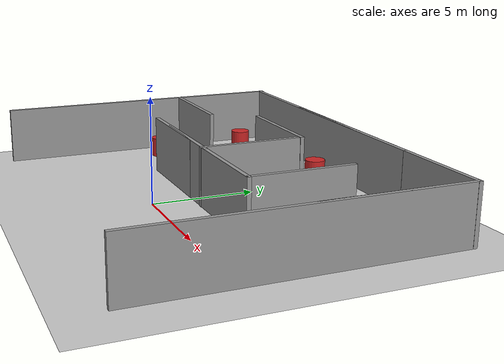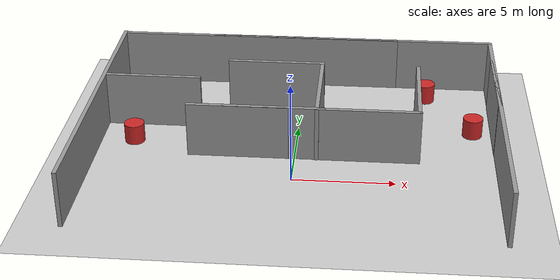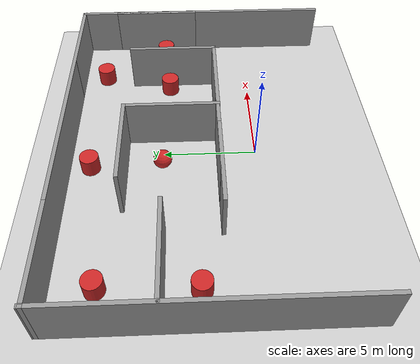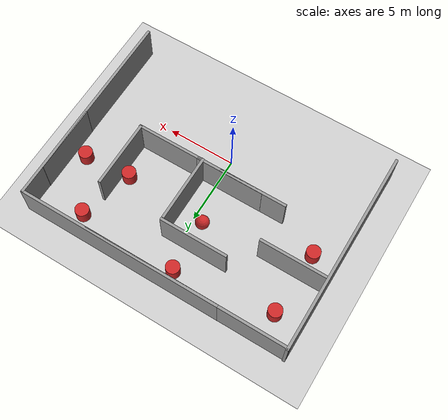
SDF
<sdf version="1.7">
 <world name="default">
  <model name="ground_plane">
   <static>1</static>
   <link name="link">
    <collision name="collision">
     <geometry><plane><normal>0 0 1</normal><size>100 100</size></plane></geometry>
     <surface>
      <contact><collide_bitmask>65535</collide_bitmask></contact>
      <friction><ode><mu>100</mu><mu2>50</mu2></ode></friction>
     </surface>
    </collision>
    <visual name="visual">
     <cast_shadows>0</cast_shadows>
     <geometry><plane><normal>0 0 1</normal><size>100 100</size></plane></geometry>
     <material>
      <script><uri>file://media/materials/scripts/gazebo.material</uri><name>Gazebo/Grey</name></script>
     </material>
    </visual>
   </link>
  </model>
  <model name="grey_wall_5_clone_clone_0_clone_1_clone_0">
   <link name="link">
    <pose>0 0 1.4 0 -0 0</pose>
    <inertial>
     <mass>1</mass>
     <inertia><ixx>1</ixx><ixy>0</ixy><ixz>0</ixz><iyy>1</iyy><iyz>0</iyz><izz>1</izz></inertia>
    </inertial>
    <visual name="visual">
     <cast_shadows>0</cast_shadows>
     <geometry><box><size>5 0.2 2.8</size></box></geometry>
     <material>
      <script>
       <uri>model://grey_wall/materials/scripts</uri>
       <uri>model://grey_wall/materials/textures</uri>
       <name>vrc/grey_wall</name>
      </script>
      <shader type="pixel"><normal_map>__default__</normal_map></shader>
      <ambient>1 1 1 1</ambient>
      <diffuse>1 1 1 1</diffuse>
      <specular>0 0 0 1</specular>
      <emissive>0 0 0 1</emissive>
     </material>
    </visual>
    <collision name="collision">
     <geometry><box><size>5 0.2 2.8</size></box></geometry>
     <surface>
      <friction>
       <ode><mu>1</mu><mu2>1</mu2><fdir1>0 0 0</fdir1><slip1>0</slip1><slip2>0</slip2></ode>
       <torsional>
        <coefficient>1</coefficient>
        <patch_radius>0</patch_radius>
        <surface_radius>0</surface_radius>
        <use_patch_radius>1</use_patch_radius>
        <ode><slip>0</slip></ode>
       </torsional>
      </friction>
      <bounce><restitution_coefficient>0</restitution_coefficient><threshold>1e+06</threshold></bounce>
      <contact>
       <collide_without_contact>0</collide_without_contact>
       <collide_without_contact_bitmask>1</collide_without_contact_bitmask>
       <collide_bitmask>1</collide_bitmask>
       <ode>
        <soft_cfm>0</soft_cfm>
        <soft_erp>0.2</soft_erp>
        <kp>1e+13</kp>
        <kd>1</kd>
        <max_vel>0.01</max_vel>
        <min_depth>0</min_depth>
       </ode>
       <bullet>
        <split_impulse>1</split_impulse>
        <split_impulse_penetration_threshold>-0.01</split_impulse_penetration_threshold>
        <soft_cfm>0</soft_cfm>
        <soft_erp>0.2</soft_erp>
        <kp>1e+13</kp>
        <kd>1</kd>
       </bullet>
      </contact>
     </surface>
    </collision>
   </link>
   <static>1</static>
   <pose>6.02291 4.49574 0 0 -0 1.57141</pose>
  </model>
  <model name="grey_wall_5_clone_clone_0_clone_1_clone_0_clone">
   <link name="link">
    <pose>0 0 1.4 0 -0 0</pose>
    <inertial>
     <mass>1</mass>
     <inertia><ixx>1</ixx><ixy>0</ixy><ixz>0</ixz><iyy>1</iyy><iyz>0</iyz><izz>1</izz></inertia>
    </inertial>
    <visual name="visual">
     <cast_shadows>0</cast_shadows>
     <geometry><box><size>5 0.2 2.8</size></box></geometry>
     <material>
      <script>
       <uri>model://grey_wall/materials/scripts</uri>
       <uri>model://grey_wall/materials/textures</uri>
       <name>vrc/grey_wall</name>
      </script>
      <shader type="pixel"><normal_map>__default__</normal_map></shader>
      <ambient>1 1 1 1</ambient>
      <diffuse>1 1 1 1</diffuse>
      <specular>0 0 0 1</specular>
      <emissive>0 0 0 1</emissive>
     </material>
    </visual>
    <collision name="collision">
     <geometry><box><size>5 0.2 2.8</size></box></geometry>
     <surface>
      <friction>
       <ode><mu>1</mu><mu2>1</mu2><fdir1>0 0 0</fdir1><slip1>0</slip1><slip2>0</slip2></ode>
       <torsional>
        <coefficient>1</coefficient>
        <patch_radius>0</patch_radius>
        <surface_radius>0</surface_radius>
        <use_patch_radius>1</use_patch_radius>
        <ode><slip>0</slip></ode>
       </torsional>
      </friction>
      <bounce><restitution_coefficient>0</restitution_coefficient><threshold>1e+06</threshold></bounce>
      <contact>
       <collide_without_contact>0</collide_without_contact>
       <collide_without_contact_bitmask>1</collide_without_contact_bitmask>
       <collide_bitmask>1</collide_bitmask>
       <ode>
        <soft_cfm>0</soft_cfm>
        <soft_erp>0.2</soft_erp>
        <kp>1e+13</kp>
        <kd>1</kd>
        <max_vel>0.01</max_vel>
        <min_depth>0</min_depth>
       </ode>
       <bullet>
        <split_impulse>1</split_impulse>
        <split_impulse_penetration_threshold>-0.01</split_impulse_penetration_threshold>
        <soft_cfm>0</soft_cfm>
        <soft_erp>0.2</soft_erp>
        <kp>1e+13</kp>
        <kd>1</kd>
       </bullet>
      </contact>
     </surface>
    </collision>
   </link>
   <static>1</static>
   <pose>1.0863 4.4302 0 0 -0 1.57141</pose>
  </model>
  <model name="grey_wall_5_clone_2">
   <link name="link">
    <pose>0 0 1.4 0 -0 0</pose>
    <inertial>
     <mass>1</mass>
     <inertia><ixx>1</ixx><ixy>0</ixy><ixz>0</ixz><iyy>1</iyy><iyz>0</iyz><izz>1</izz></inertia>
    </inertial>
    <visual name="visual">
     <cast_shadows>0</cast_shadows>
     <geometry><box><size>5 0.2 2.8</size></box></geometry>
     <material>
      <script>
       <uri>model://grey_wall/materials/scripts</uri>
       <uri>model://grey_wall/materials/textures</uri>
       <name>vrc/grey_wall</name>
      </script>
      <shader type="pixel"><normal_map>__default__</normal_map></shader>
      <ambient>1 1 1 1</ambient>
      <diffuse>1 1 1 1</diffuse>
      <specular>0 0 0 1</specular>
      <emissive>0 0 0 1</emissive>
     </material>
    </visual>
    <collision name="collision">
     <geometry><box><size>5 0.2 2.8</size></box></geometry>
     <surface>
      <friction>
       <ode><mu>1</mu><mu2>1</mu2><fdir1>0 0 0</fdir1><slip1>0</slip1><slip2>0</slip2></ode>
       <torsional>
        <coefficient>1</coefficient>
        <patch_radius>0</patch_radius>
        <surface_radius>0</surface_radius>
        <use_patch_radius>1</use_patch_radius>
        <ode><slip>0</slip></ode>
       </torsional>
      </friction>
      <bounce><restitution_coefficient>0</restitution_coefficient><threshold>1e+06</threshold></bounce>
      <contact>
       <collide_without_contact>0</collide_without_contact>
       <collide_without_contact_bitmask>1</collide_without_contact_bitmask>
       <collide_bitmask>1</collide_bitmask>
       <ode>
        <soft_cfm>0</soft_cfm>
        <soft_erp>0.2</soft_erp>
        <kp>1e+13</kp>
        <kd>1</kd>
        <max_vel>0.01</max_vel>
        <min_depth>0</min_depth>
       </ode>
       <bullet>
        <split_impulse>1</split_impulse>
        <split_impulse_penetration_threshold>-0.01</split_impulse_penetration_threshold>
        <soft_cfm>0</soft_cfm>
        <soft_erp>0.2</soft_erp>
        <kp>1e+13</kp>
        <kd>1</kd>
       </bullet>
      </contact>
     </surface>
    </collision>
   </link>
   <static>1</static>
   <pose>3.64905 2.04661 0 0 0 -0.000612</pose>
  </model>
  <model name="grey_wall_5_clone_clone">
   <link name="link">
    <pose>0 0 1.4 0 -0 0</pose>
    <inertial>
     <mass>1</mass>
     <inertia><ixx>1</ixx><ixy>0</ixy><ixz>0</ixz><iyy>1</iyy><iyz>0</iyz><izz>1</izz></inertia>
    </inertial>
    <visual name="visual">
     <cast_shadows>0</cast_shadows>
     <geometry><box><size>5 0.2 2.8</size></box></geometry>
     <material>
      <script>
       <uri>model://grey_wall/materials/scripts</uri>
       <uri>model://grey_wall/materials/textures</uri>
       <name>vrc/grey_wall</name>
      </script>
      <shader type="pixel"><normal_map>__default__</normal_map></shader>
      <ambient>1 1 1 1</ambient>
      <diffuse>1 1 1 1</diffuse>
      <specular>0 0 0 1</specular>
      <emissive>0 0 0 1</emissive>
     </material>
    </visual>
    <collision name="collision">
     <geometry><box><size>5 0.2 2.8</size></box></geometry>
     <surface>
      <friction>
       <ode><mu>1</mu><mu2>1</mu2><fdir1>0 0 0</fdir1><slip1>0</slip1><slip2>0</slip2></ode>
       <torsional>
        <coefficient>1</coefficient>
        <patch_radius>0</patch_radius>
        <surface_radius>0</surface_radius>
        <use_patch_radius>1</use_patch_radius>
        <ode><slip>0</slip></ode>
       </torsional>
      </friction>
      <bounce><restitution_coefficient>0</restitution_coefficient><threshold>1e+06</threshold></bounce>
      <contact>
       <collide_without_contact>0</collide_without_contact>
       <collide_without_contact_bitmask>1</collide_without_contact_bitmask>
       <collide_bitmask>1</collide_bitmask>
       <ode>
        <soft_cfm>0</soft_cfm>
        <soft_erp>0.2</soft_erp>
        <kp>1e+13</kp>
        <kd>1</kd>
        <max_vel>0.01</max_vel>
        <min_depth>0</min_depth>
       </ode>
       <bullet>
        <split_impulse>1</split_impulse>
        <split_impulse_penetration_threshold>-0.01</split_impulse_penetration_threshold>
        <soft_cfm>0</soft_cfm>
        <soft_erp>0.2</soft_erp>
        <kp>1e+13</kp>
        <kd>1</kd>
       </bullet>
      </contact>
     </surface>
    </collision>
   </link>
   <static>1</static>
   <pose>9.88535 5.54473 0 0 -0 1.57141</pose>
  </model>
  <model name="grey_wall_15_clone_0_clone_2_clone_0">
   <link name="link">
    <pose>0 0 1.4 0 -0 0</pose>
    <inertial>
     <mass>1</mass>
     <inertia><ixx>1</ixx><ixy>0</ixy><ixz>0</ixz><iyy>1</iyy><iyz>0</iyz><izz>1</izz></inertia>
    </inertial>
    <visual name="visual">
     <cast_shadows>0</cast_shadows>
     <geometry><box><size>15 0.2 2.8</size></box></geometry>
     <material>
      <script>
       <uri>model://grey_wall/materials/scripts</uri>
       <uri>model://grey_wall/materials/textures</uri>
       <name>vrc/grey_wall</name>
      </script>
      <shader type="pixel"><normal_map>__default__</normal_map></shader>
      <ambient>1 1 1 1</ambient>
      <diffuse>1 1 1 1</diffuse>
      <specular>0 0 0 1</specular>
      <emissive>0 0 0 1</emissive>
     </material>
    </visual>
    <collision name="collision">
     <geometry><box><size>15 0.2 2.8</size></box></geometry>
     <surface>
      <friction>
       <ode><mu>1</mu><mu2>1</mu2><fdir1>0 0 0</fdir1><slip1>0</slip1><slip2>0</slip2></ode>
       <torsional>
        <coefficient>1</coefficient>
        <patch_radius>0</patch_radius>
        <surface_radius>0</surface_radius>
        <use_patch_radius>1</use_patch_radius>
        <ode><slip>0</slip></ode>
       </torsional>
      </friction>
      <bounce><restitution_coefficient>0</restitution_coefficient><threshold>1e+06</threshold></bounce>
      <contact>
       <collide_without_contact>0</collide_without_contact>
       <collide_without_contact_bitmask>1</collide_without_contact_bitmask>
       <collide_bitmask>1</collide_bitmask>
       <ode>
        <soft_cfm>0</soft_cfm>
        <soft_erp>0.2</soft_erp>
        <kp>1e+13</kp>
        <kd>1</kd>
        <max_vel>0.01</max_vel>
        <min_depth>0</min_depth>
       </ode>
       <bullet>
        <split_impulse>1</split_impulse>
        <split_impulse_penetration_threshold>-0.01</split_impulse_penetration_threshold>
        <soft_cfm>0</soft_cfm>
        <soft_erp>0.2</soft_erp>
        <kp>1e+13</kp>
        <kd>1</kd>
       </bullet>
      </contact>
     </surface>
    </collision>
   </link>
   <static>1</static>
   <pose>9.90394 2.70414 0 0 -0 1.57141</pose>
  </model>
  <model name="grey_wall_15_clone_0_clone_clone_clone_clone_0_clone">
   <link name="link">
    <pose>0 0 1.4 0 -0 0</pose>
    <inertial>
     <mass>1</mass>
     <inertia><ixx>1</ixx><ixy>0</ixy><ixz>0</ixz><iyy>1</iyy><iyz>0</iyz><izz>1</izz></inertia>
    </inertial>
    <visual name="visual">
     <cast_shadows>0</cast_shadows>
     <geometry><box><size>15 0.2 2.8</size></box></geometry>
     <material>
      <script>
       <uri>model://grey_wall/materials/scripts</uri>
       <uri>model://grey_wall/materials/textures</uri>
       <name>vrc/grey_wall</name>
      </script>
      <shader type="pixel"><normal_map>__default__</normal_map></shader>
      <ambient>1 1 1 1</ambient>
      <diffuse>1 1 1 1</diffuse>
      <specular>0 0 0 1</specular>
      <emissive>0 0 0 1</emissive>
     </material>
    </visual>
    <collision name="collision">
     <geometry><box><size>15 0.2 2.8</size></box></geometry>
     <surface>
      <friction>
       <ode><mu>1</mu><mu2>1</mu2><fdir1>0 0 0</fdir1><slip1>0</slip1><slip2>0</slip2></ode>
       <torsional>
        <coefficient>1</coefficient>
        <patch_radius>0</patch_radius>
        <surface_radius>0</surface_radius>
        <use_patch_radius>1</use_patch_radius>
        <ode><slip>0</slip></ode>
       </torsional>
      </friction>
      <bounce><restitution_coefficient>0</restitution_coefficient><threshold>1e+06</threshold></bounce>
      <contact>
       <collide_without_contact>0</collide_without_contact>
       <collide_without_contact_bitmask>1</collide_without_contact_bitmask>
       <collide_bitmask>1</collide_bitmask>
       <ode>
        <soft_cfm>0</soft_cfm>
        <soft_erp>0.2</soft_erp>
        <kp>1e+13</kp>
        <kd>1</kd>
        <max_vel>0.01</max_vel>
        <min_depth>0</min_depth>
       </ode>
       <bullet>
        <split_impulse>1</split_impulse>
        <split_impulse_penetration_threshold>-0.01</split_impulse_penetration_threshold>
        <soft_cfm>0</soft_cfm>
        <soft_erp>0.2</soft_erp>
        <kp>1e+13</kp>
        <kd>1</kd>
       </bullet>
      </contact>
     </surface>
    </collision>
   </link>
   <static>1</static>
   <pose>-2.52981 10.1104 0 0 -0 0.001488</pose>
  </model>
  <model name="grey_wall_15_clone_0_clone_clone_clone_clone_0_clone_0">
   <link name="link">
    <pose>0 0 1.4 0 -0 0</pose>
    <inertial>
     <mass>1</mass>
     <inertia><ixx>1</ixx><ixy>0</ixy><ixz>0</ixz><iyy>1</iyy><iyz>0</iyz><izz>1</izz></inertia>
    </inertial>
    <visual name="visual">
     <cast_shadows>0</cast_shadows>
     <geometry><box><size>15 0.2 2.8</size></box></geometry>
     <material>
      <script>
       <uri>model://grey_wall/materials/scripts</uri>
       <uri>model://grey_wall/materials/textures</uri>
       <name>vrc/grey_wall</name>
      </script>
      <shader type="pixel"><normal_map>__default__</normal_map></shader>
      <ambient>1 1 1 1</ambient>
      <diffuse>1 1 1 1</diffuse>
      <specular>0 0 0 1</specular>
      <emissive>0 0 0 1</emissive>
     </material>
    </visual>
    <collision name="collision">
     <geometry><box><size>15 0.2 2.8</size></box></geometry>
     <surface>
      <friction>
       <ode><mu>1</mu><mu2>1</mu2><fdir1>0 0 0</fdir1><slip1>0</slip1><slip2>0</slip2></ode>
       <torsional>
        <coefficient>1</coefficient>
        <patch_radius>0</patch_radius>
        <surface_radius>0</surface_radius>
        <use_patch_radius>1</use_patch_radius>
        <ode><slip>0</slip></ode>
       </torsional>
      </friction>
      <bounce><restitution_coefficient>0</restitution_coefficient><threshold>1e+06</threshold></bounce>
      <contact>
       <collide_without_contact>0</collide_without_contact>
       <collide_without_contact_bitmask>1</collide_without_contact_bitmask>
       <collide_bitmask>1</collide_bitmask>
       <ode>
        <soft_cfm>0</soft_cfm>
        <soft_erp>0.2</soft_erp>
        <kp>1e+13</kp>
        <kd>1</kd>
        <max_vel>0.01</max_vel>
        <min_depth>0</min_depth>
       </ode>
       <bullet>
        <split_impulse>1</split_impulse>
        <split_impulse_penetration_threshold>-0.01</split_impulse_penetration_threshold>
        <soft_cfm>0</soft_cfm>
        <soft_erp>0.2</soft_erp>
        <kp>1e+13</kp>
        <kd>1</kd>
       </bullet>
      </contact>
     </surface>
    </collision>
   </link>
   <static>1</static>
   <pose>2.50794 10.1235 0 0 -0 0.001488</pose>
  </model>
  <model name="grey_wall_15_clone_0_clone_2_clone_0_clone">
   <link name="link">
    <pose>0 0 1.4 0 -0 0</pose>
    <inertial>
     <mass>1</mass>
     <inertia><ixx>1</ixx><ixy>0</ixy><ixz>0</ixz><iyy>1</iyy><iyz>0</iyz><izz>1</izz></inertia>
    </inertial>
    <visual name="visual">
     <cast_shadows>0</cast_shadows>
     <geometry><box><size>15 0.2 2.8</size></box></geometry>
     <material>
      <script>
       <uri>model://grey_wall/materials/scripts</uri>
       <uri>model://grey_wall/materials/textures</uri>
       <name>vrc/grey_wall</name>
      </script>
      <shader type="pixel"><normal_map>__default__</normal_map></shader>
      <ambient>1 1 1 1</ambient>
      <diffuse>1 1 1 1</diffuse>
      <specular>0 0 0 1</specular>
      <emissive>0 0 0 1</emissive>
     </material>
    </visual>
    <collision name="collision">
     <geometry><box><size>15 0.2 2.8</size></box></geometry>
     <surface>
      <friction>
       <ode><mu>1</mu><mu2>1</mu2><fdir1>0 0 0</fdir1><slip1>0</slip1><slip2>0</slip2></ode>
       <torsional>
        <coefficient>1</coefficient>
        <patch_radius>0</patch_radius>
        <surface_radius>0</surface_radius>
        <use_patch_radius>1</use_patch_radius>
        <ode><slip>0</slip></ode>
       </torsional>
      </friction>
      <bounce><restitution_coefficient>0</restitution_coefficient><threshold>1e+06</threshold></bounce>
      <contact>
       <collide_without_contact>0</collide_without_contact>
       <collide_without_contact_bitmask>1</collide_without_contact_bitmask>
       <collide_bitmask>1</collide_bitmask>
       <ode>
        <soft_cfm>0</soft_cfm>
        <soft_erp>0.2</soft_erp>
        <kp>1e+13</kp>
        <kd>1</kd>
        <max_vel>0.01</max_vel>
        <min_depth>0</min_depth>
       </ode>
       <bullet>
        <split_impulse>1</split_impulse>
        <split_impulse_penetration_threshold>-0.01</split_impulse_penetration_threshold>
        <soft_cfm>0</soft_cfm>
        <soft_erp>0.2</soft_erp>
        <kp>1e+13</kp>
        <kd>1</kd>
       </bullet>
      </contact>
     </surface>
    </collision>
   </link>
   <static>1</static>
   <pose>-9.92522 2.76873 0 0 -0 1.57141</pose>
  </model>
  <model name="grey_wall_5_clone_2_clone_clone_clone_clone_0">
   <link name="link">
    <pose>0 0 1.4 0 -0 0</pose>
    <inertial>
     <mass>1</mass>
     <inertia><ixx>1</ixx><ixy>0</ixy><ixz>0</ixz><iyy>1</iyy><iyz>0</iyz><izz>1</izz></inertia>
    </inertial>
    <visual name="visual">
     <cast_shadows>0</cast_shadows>
     <geometry><box><size>5 0.2 2.8</size></box></geometry>
     <material>
      <script>
       <uri>model://grey_wall/materials/scripts</uri>
       <uri>model://grey_wall/materials/textures</uri>
       <name>vrc/grey_wall</name>
      </script>
      <shader type="pixel"><normal_map>__default__</normal_map></shader>
      <ambient>1 1 1 1</ambient>
      <diffuse>1 1 1 1</diffuse>
      <specular>0 0 0 1</specular>
      <emissive>0 0 0 1</emissive>
     </material>
    </visual>
    <collision name="collision">
     <geometry><box><size>5 0.2 2.8</size></box></geometry>
     <surface>
      <friction>
       <ode><mu>1</mu><mu2>1</mu2><fdir1>0 0 0</fdir1><slip1>0</slip1><slip2>0</slip2></ode>
       <torsional>
        <coefficient>1</coefficient>
        <patch_radius>0</patch_radius>
        <surface_radius>0</surface_radius>
        <use_patch_radius>1</use_patch_radius>
        <ode><slip>0</slip></ode>
       </torsional>
      </friction>
      <bounce><restitution_coefficient>0</restitution_coefficient><threshold>1e+06</threshold></bounce>
      <contact>
       <collide_without_contact>0</collide_without_contact>
       <collide_without_contact_bitmask>1</collide_without_contact_bitmask>
       <collide_bitmask>1</collide_bitmask>
       <ode>
        <soft_cfm>0</soft_cfm>
        <soft_erp>0.2</soft_erp>
        <kp>1e+13</kp>
        <kd>1</kd>
        <max_vel>0.01</max_vel>
        <min_depth>0</min_depth>
       </ode>
       <bullet>
        <split_impulse>1</split_impulse>
        <split_impulse_penetration_threshold>-0.01</split_impulse_penetration_threshold>
        <soft_cfm>0</soft_cfm>
        <soft_erp>0.2</soft_erp>
        <kp>1e+13</kp>
        <kd>1</kd>
       </bullet>
      </contact>
     </surface>
    </collision>
   </link>
   <static>1</static>
   <pose>-7.48759 4.95531 0 0 0 -0.000612</pose>
  </model>
  <model name="grey_wall_5_clone_2_clone_clone_clone_clone_0_clone">
   <link name="link">
    <pose>0 0 1.4 0 -0 0</pose>
    <inertial>
     <mass>1</mass>
     <inertia><ixx>1</ixx><ixy>0</ixy><ixz>0</ixz><iyy>1</iyy><iyz>0</iyz><izz>1</izz></inertia>
    </inertial>
    <visual name="visual">
     <cast_shadows>0</cast_shadows>
     <geometry><box><size>5 0.2 2.8</size></box></geometry>
     <material>
      <script>
       <uri>model://grey_wall/materials/scripts</uri>
       <uri>model://grey_wall/materials/textures</uri>
       <name>vrc/grey_wall</name>
      </script>
      <shader type="pixel"><normal_map>__default__</normal_map></shader>
      <ambient>1 1 1 1</ambient>
      <diffuse>1 1 1 1</diffuse>
      <specular>0 0 0 1</specular>
      <emissive>0 0 0 1</emissive>
     </material>
    </visual>
    <collision name="collision">
     <geometry><box><size>5 0.2 2.8</size></box></geometry>
     <surface>
      <friction>
       <ode><mu>1</mu><mu2>1</mu2><fdir1>0 0 0</fdir1><slip1>0</slip1><slip2>0</slip2></ode>
       <torsional>
        <coefficient>1</coefficient>
        <patch_radius>0</patch_radius>
        <surface_radius>0</surface_radius>
        <use_patch_radius>1</use_patch_radius>
        <ode><slip>0</slip></ode>
       </torsional>
      </friction>
      <bounce><restitution_coefficient>0</restitution_coefficient><threshold>1e+06</threshold></bounce>
      <contact>
       <collide_without_contact>0</collide_without_contact>
       <collide_without_contact_bitmask>1</collide_without_contact_bitmask>
       <collide_bitmask>1</collide_bitmask>
       <ode>
        <soft_cfm>0</soft_cfm>
        <soft_erp>0.2</soft_erp>
        <kp>1e+13</kp>
        <kd>1</kd>
        <max_vel>0.01</max_vel>
        <min_depth>0</min_depth>
       </ode>
       <bullet>
        <split_impulse>1</split_impulse>
        <split_impulse_penetration_threshold>-0.01</split_impulse_penetration_threshold>
        <soft_cfm>0</soft_cfm>
        <soft_erp>0.2</soft_erp>
        <kp>1e+13</kp>
        <kd>1</kd>
       </bullet>
      </contact>
     </surface>
    </collision>
   </link>
   <static>1</static>
   <pose>-1.30797 7.04064 0 0 0 -0.000612</pose>
  </model>
  <model name="grey_wall_5_clone_2_clone_clone_clone_clone_0_clone_0">
   <link name="link">
    <pose>0 0 1.4 0 -0 0</pose>
    <inertial>
     <mass>1</mass>
     <inertia><ixx>1</ixx><ixy>0</ixy><ixz>0</ixz><iyy>1</iyy><iyz>0</iyz><izz>1</izz></inertia>
    </inertial>
    <visual name="visual">
     <cast_shadows>0</cast_shadows>
     <geometry><box><size>5 0.2 2.8</size></box></geometry>
     <material>
      <script>
       <uri>model://grey_wall/materials/scripts</uri>
       <uri>model://grey_wall/materials/textures</uri>
       <name>vrc/grey_wall</name>
      </script>
      <shader type="pixel"><normal_map>__default__</normal_map></shader>
      <ambient>1 1 1 1</ambient>
      <diffuse>1 1 1 1</diffuse>
      <specular>0 0 0 1</specular>
      <emissive>0 0 0 1</emissive>
     </material>
    </visual>
    <collision name="collision">
     <geometry><box><size>5 0.2 2.8</size></box></geometry>
     <surface>
      <friction>
       <ode><mu>1</mu><mu2>1</mu2><fdir1>0 0 0</fdir1><slip1>0</slip1><slip2>0</slip2></ode>
       <torsional>
        <coefficient>1</coefficient>
        <patch_radius>0</patch_radius>
        <surface_radius>0</surface_radius>
        <use_patch_radius>1</use_patch_radius>
        <ode><slip>0</slip></ode>
       </torsional>
      </friction>
      <bounce><restitution_coefficient>0</restitution_coefficient><threshold>1e+06</threshold></bounce>
      <contact>
       <collide_without_contact>0</collide_without_contact>
       <collide_without_contact_bitmask>1</collide_without_contact_bitmask>
       <collide_bitmask>1</collide_bitmask>
       <ode>
        <soft_cfm>0</soft_cfm>
        <soft_erp>0.2</soft_erp>
        <kp>1e+13</kp>
        <kd>1</kd>
        <max_vel>0.01</max_vel>
        <min_depth>0</min_depth>
       </ode>
       <bullet>
        <split_impulse>1</split_impulse>
        <split_impulse_penetration_threshold>-0.01</split_impulse_penetration_threshold>
        <soft_cfm>0</soft_cfm>
        <soft_erp>0.2</soft_erp>
        <kp>1e+13</kp>
        <kd>1</kd>
       </bullet>
      </contact>
     </surface>
    </collision>
   </link>
   <static>1</static>
   <pose>-1.00956 2.06724 0 0 0 -0.000612</pose>
  </model>
  <model name="grey_wall_5_clone_2_clone_clone_clone_clone_0_clone_0_clone">
   <link name="link">
    <pose>0 0 1.4 0 -0 0</pose>
    <inertial>
     <mass>1</mass>
     <inertia><ixx>1</ixx><ixy>0</ixy><ixz>0</ixz><iyy>1</iyy><iyz>0</iyz><izz>1</izz></inertia>
    </inertial>
    <visual name="visual">
     <cast_shadows>0</cast_shadows>
     <geometry><box><size>5 0.2 2.8</size></box></geometry>
     <material>
      <script>
       <uri>model://grey_wall/materials/scripts</uri>
       <uri>model://grey_wall/materials/textures</uri>
       <name>vrc/grey_wall</name>
      </script>
      <shader type="pixel"><normal_map>__default__</normal_map></shader>
      <ambient>1 1 1 1</ambient>
      <diffuse>1 1 1 1</diffuse>
      <specular>0 0 0 1</specular>
      <emissive>0 0 0 1</emissive>
     </material>
    </visual>
    <collision name="collision">
     <geometry><box><size>5 0.2 2.8</size></box></geometry>
     <surface>
      <friction>
       <ode><mu>1</mu><mu2>1</mu2><fdir1>0 0 0</fdir1><slip1>0</slip1><slip2>0</slip2></ode>
       <torsional>
        <coefficient>1</coefficient>
        <patch_radius>0</patch_radius>
        <surface_radius>0</surface_radius>
        <use_patch_radius>1</use_patch_radius>
        <ode><slip>0</slip></ode>
       </torsional>
      </friction>
      <bounce><restitution_coefficient>0</restitution_coefficient><threshold>1e+06</threshold></bounce>
      <contact>
       <collide_without_contact>0</collide_without_contact>
       <collide_without_contact_bitmask>1</collide_without_contact_bitmask>
       <collide_bitmask>1</collide_bitmask>
       <ode>
        <soft_cfm>0</soft_cfm>
        <soft_erp>0.2</soft_erp>
        <kp>1e+13</kp>
        <kd>1</kd>
        <max_vel>0.01</max_vel>
        <min_depth>0</min_depth>
       </ode>
       <bullet>
        <split_impulse>1</split_impulse>
        <split_impulse_penetration_threshold>-0.01</split_impulse_penetration_threshold>
        <soft_cfm>0</soft_cfm>
        <soft_erp>0.2</soft_erp>
        <kp>1e+13</kp>
        <kd>1</kd>
       </bullet>
      </contact>
     </surface>
    </collision>
   </link>
   <static>1</static>
   <pose>-2.7865 2.06074 0 0 0 -0.000612</pose>
  </model>
  <model name="unit_cylinder_0">
   <pose>8.84806 4.9903 0.499998 3e-06 -2e-06 0</pose>
   <link name="link">
    <inertial>
     <mass>1</mass>
     <inertia><ixx>0.145833</ixx><ixy>0</ixy><ixz>0</ixz><iyy>0.145833</iyy><iyz>0</iyz><izz>0.125</izz></inertia>
    </inertial>
    <collision name="collision">
     <geometry><cylinder><radius>0.5</radius><length>1</length></cylinder></geometry>
    </collision>
    <visual name="visual">
     <geometry><cylinder><radius>0.5</radius><length>1</length></cylinder></geometry>
     <material>
      <script><name>Gazebo/Red</name><uri>file://media/materials/scripts/gazebo.material</uri></script>
      <ambient>1 0 0 1</ambient>
     </material>
    </visual>
   </link>
  </model>
  <model name="unit_cylinder_1">
   <pose>6.51794 8.67324 0.499993 -3e-06 3e-06 0</pose>
   <link name="link">
    <inertial>
     <mass>1</mass>
     <inertia><ixx>0.145833</ixx><ixy>0</ixy><ixz>0</ixz><iyy>0.145833</iyy><iyz>0</iyz><izz>0.125</izz></inertia>
    </inertial>
    <collision name="collision">
     <geometry><cylinder><radius>0.5</radius><length>1</length></cylinder></geometry>
    </collision>
    <visual name="visual">
     <geometry><cylinder><radius>0.5</radius><length>1</length></cylinder></geometry>
     <material>
      <script><name>Gazebo/Red</name><uri>file://media/materials/scripts/gazebo.material</uri></script>
     </material>
    </visual>
   </link>
  </model>
  <model name="unit_sphere">
   <pose>-0.731109 5.05986 0.5 0 -0 0</pose>
   <link name="link">
    <inertial>
     <mass>1</mass>
     <inertia><ixx>0.1</ixx><ixy>0</ixy><ixz>0</ixz><iyy>0.1</iyy><iyz>0</iyz><izz>0.1</izz></inertia>
    </inertial>
    <collision name="collision"><geometry><sphere><radius>0.5</radius></sphere></geometry></collision>
    <visual name="visual">
     <geometry><sphere><radius>0.5</radius></sphere></geometry>
     <material>
      <script><name>Gazebo/Red</name><uri>file://media/materials/scripts/gazebo.material</uri></script>
     </material>
    </visual>
   </link>
  </model>
  <model name="unit_cylinder_3">
   <pose>-7.97121 7.93793 0.499998 3e-06 -3e-06 0</pose>
   <link name="link">
    <inertial>
     <mass>1</mass>
     <inertia><ixx>0.145833</ixx><ixy>0</ixy><ixz>0</ixz><iyy>0.145833</iyy><iyz>0</iyz><izz>0.125</izz></inertia>
    </inertial>
    <collision name="collision">
     <geometry><cylinder><radius>0.5</radius><length>1</length></cylinder></geometry>
    </collision>
    <visual name="visual">
     <geometry><cylinder><radius>0.5</radius><length>1</length></cylinder></geometry>
     <material>
      <script><name>Gazebo/Red</name><uri>file://media/materials/scripts/gazebo.material</uri></script>
     </material>
    </visual>
   </link>
  </model>
  <model name="unit_cylinder_4">
   <pose>5.41041 4.70605 0.499998 3e-06 -4e-06 0</pose>
   <link name="link">
    <inertial>
     <mass>1</mass>
     <inertia><ixx>0.145833</ixx><ixy>0</ixy><ixz>0</ixz><iyy>0.145833</iyy><iyz>0</iyz><izz>0.125</izz></inertia>
    </inertial>
    <collision name="collision">
     <geometry><cylinder><radius>0.5</radius><length>1</length></cylinder></geometry>
    </collision>
    <visual name="visual">
     <geometry><cylinder><radius>0.5</radius><length>1</length></cylinder></geometry>
     <material>
      <script><name>Gazebo/Red</name><uri>file://media/materials/scripts/gazebo.material</uri></script>
     </material>
    </visual>
   </link>
  </model>
  <model name="unit_cylinder_5">
   <pose>-0.862842 8.90553 0.499992 -3e-06 4e-06 0</pose>
   <link name="link">
    <inertial>
     <mass>1</mass>
     <inertia><ixx>0.145833</ixx><ixy>0</ixy><ixz>0</ixz><iyy>0.145833</iyy><iyz>0</iyz><izz>0.125</izz></inertia>
    </inertial>
    <collision name="collision">
     <geometry><cylinder><radius>0.5</radius><length>1</length></cylinder></geometry>
    </collision>
    <visual name="visual">
     <geometry><cylinder><radius>0.5</radius><length>1</length></cylinder></geometry>
     <material>
      <script><name>Gazebo/Red</name><uri>file://media/materials/scripts/gazebo.material</uri></script>
     </material>
    </visual>
   </link>
  </model>
  <model name="unit_cylinder_6">
   <pose>-8.15342 3.18489 0.499998 3e-06 -4e-06 0</pose>
   <link name="link">
    <inertial>
     <mass>1</mass>
     <inertia><ixx>0.145833</ixx><ixy>0</ixy><ixz>0</ixz><iyy>0.145833</iyy><iyz>0</iyz><izz>0.125</izz></inertia>
    </inertial>
    <collision name="collision">
     <geometry><cylinder><radius>0.5</radius><length>1</length></cylinder></geometry>
    </collision>
    <visual name="visual">
     <geometry><cylinder><radius>0.5</radius><length>1</length></cylinder></geometry>
     <material>
      <script><name>Gazebo/Red</name><uri>file://media/materials/scripts/gazebo.material</uri></script>
     </material>
    </visual>
   </link>
  </model>
 </world>
</sdf>
